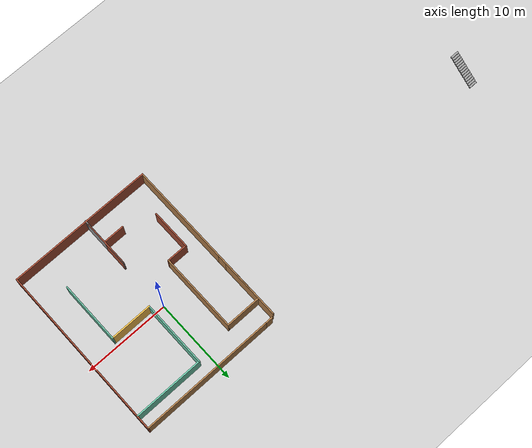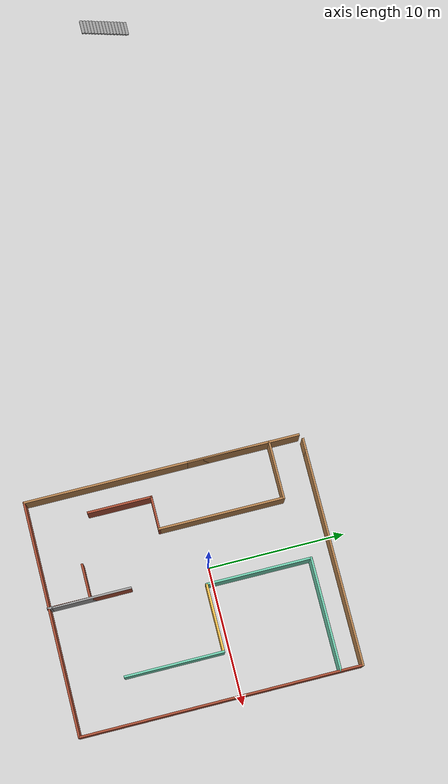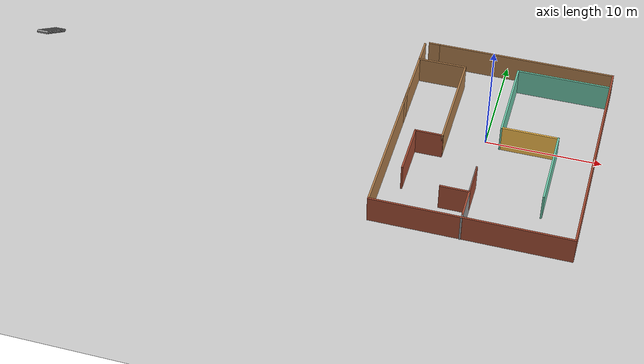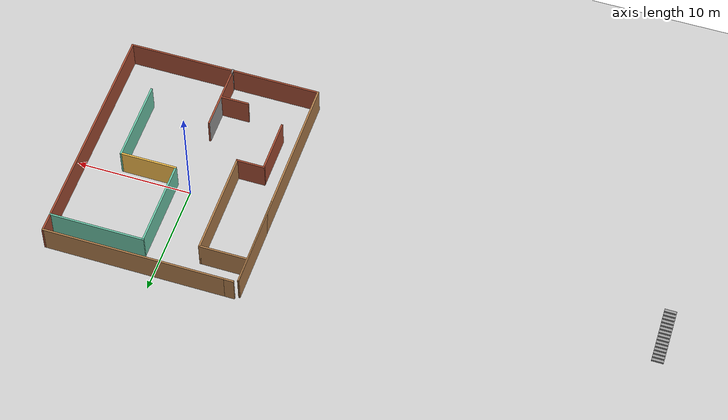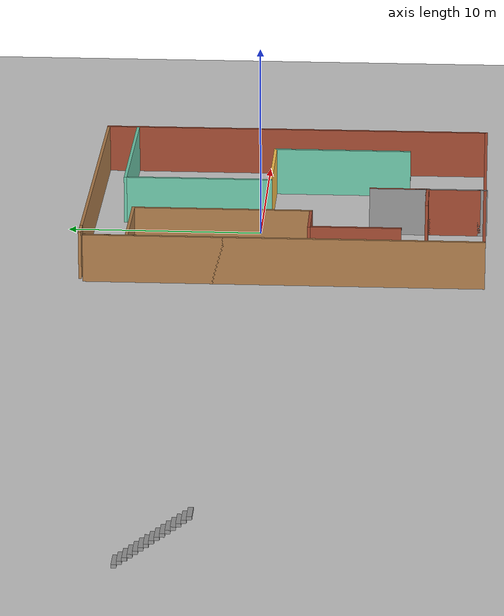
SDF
<sdf version="1.7">
 <world name="default">
  <light name="sun" type="directional">
   <pose>0 0 10 0 -0 0</pose>
   <diffuse>0.8 0.8 0.8 1</diffuse>
   <specular>0.2 0.2 0.2 1</specular>
   <attenuation>
    <range>1000</range>
    <constant>0.9</constant>
    <linear>0.01</linear>
    <quadratic>0.001</quadratic>
   </attenuation>
   <direction>-0.5 0.1 -0.9</direction>
   <spot><inner_angle>0</inner_angle><outer_angle>0</outer_angle><falloff>0</falloff></spot>
  </light>
  <model name="ground_plane">
   <static>1</static>
   <link name="link">
    <collision name="collision">
     <geometry><plane><normal>0 0 1</normal><size>100 100</size></plane></geometry>
     <surface><friction><ode><mu>100</mu><mu2>50</mu2></ode></friction></surface>
    </collision>
    <visual name="visual">
     <cast_shadows>0</cast_shadows>
     <geometry><plane><normal>0 0 1</normal><size>100 100</size></plane></geometry>
     <material>
      <script><uri>file://media/materials/scripts/gazebo.material</uri><name>Gazebo/Grey</name></script>
     </material>
    </visual>
   </link>
  </model>
  <gravity>0 0 -9.8</gravity>
  <magnetic_field>6e-06 2.3e-05 -4.2e-05</magnetic_field>
  <atmosphere type="adiabatic"/>
  <physics type="ode">
   <max_step_size>0.001</max_step_size>
   <real_time_factor>1</real_time_factor>
   <real_time_update_rate>1000</real_time_update_rate>
  </physics>
  <scene><ambient>0.4 0.4 0.4 1</ambient><background>0.7 0.7 0.7 1</background><shadows>1</shadows></scene>
  <audio><device>default</device></audio>
  <spherical_coordinates>
   <surface_model>EARTH_WGS84</surface_model>
   <latitude_deg>0</latitude_deg>
   <longitude_deg>0</longitude_deg>
   <elevation>0</elevation>
   <heading_deg>0</heading_deg>
  </spherical_coordinates>
  <model name="ROOM">
   <pose>1.00201 -1.46261 0 0 -0 0</pose>
   <link name="Wall_11">
    <collision name="Wall_11_Collision">
     <geometry><box><size>4.25 0.15 2.5</size></box></geometry>
     <pose>0 0 1.25 0 -0 0</pose>
    </collision>
    <visual name="Wall_11_Visual">
     <pose>0 0 1.25 0 -0 0</pose>
     <geometry><box><size>4.25 0.15 2.5</size></box></geometry>
     <material>
      <script><uri>file://media/materials/scripts/gazebo.material</uri><name>Gazebo/Wood</name></script>
      <ambient>1 1 1 1</ambient>
     </material>
     <meta><layer>0</layer></meta>
    </visual>
    <pose>-6.33916 7.80408 0 0 -0 0</pose>
   </link>
   <link name="Wall_12">
    <collision name="Wall_12_Collision">
     <geometry><box><size>9.25 0.15 2.5</size></box></geometry>
     <pose>0 0 1.25 0 -0 0</pose>
    </collision>
    <visual name="Wall_12_Visual">
     <pose>0 0 1.25 0 -0 0</pose>
     <geometry><box><size>9.25 0.15 2.5</size></box></geometry>
     <material>
      <script><uri>file://media/materials/scripts/gazebo.material</uri><name>Gazebo/Wood</name></script>
      <ambient>1 1 1 1</ambient>
     </material>
     <meta><layer>0</layer></meta>
    </visual>
    <pose>-4.28916 3.25408 0 0 -0 -1.5708</pose>
   </link>
   <link name="Wall_13">
    <collision name="Wall_13_Collision">
     <geometry><box><size>2.5 0.15 2.5</size></box></geometry>
     <pose>0 0 1.25 0 -0 0</pose>
    </collision>
    <visual name="Wall_13_Visual">
     <pose>0 0 1.25 0 -0 0</pose>
     <geometry><box><size>2.5 0.15 2.5</size></box></geometry>
     <material>
      <script><uri>file://media/materials/scripts/gazebo.material</uri><name>Gazebo/Bricks</name></script>
      <ambient>1 1 1 1</ambient>
     </material>
     <meta><layer>0</layer></meta>
    </visual>
    <pose>-5.46416 -1.29592 0 0 -0 3.14159</pose>
   </link>
   <link name="Wall_14">
    <collision name="Wall_14_Collision">
     <geometry><box><size>4.75 0.15 2.5</size></box></geometry>
     <pose>0 0 1.25 0 -0 0</pose>
    </collision>
    <visual name="Wall_14_Visual">
     <pose>0 0 1.25 0 -0 0</pose>
     <geometry><box><size>4.75 0.15 2.5</size></box></geometry>
     <material>
      <script><uri>file://media/materials/scripts/gazebo.material</uri><name>Gazebo/Bricks</name></script>
      <ambient>1 1 1 1</ambient>
     </material>
     <meta><layer>0</layer></meta>
    </visual>
    <pose>-6.63916 -3.59592 0 0 -0 -1.5708</pose>
   </link>
   <link name="Wall_16">
    <collision name="Wall_16_Collision">
     <geometry><box><size>8.25 0.15 2.5</size></box></geometry>
     <pose>0 0 1.25 0 -0 0</pose>
    </collision>
    <visual name="Wall_16_Visual">
     <pose>0 0 1.25 0 -0 0</pose>
     <geometry><box><size>8.25 0.15 2.5</size></box></geometry>
     <material>
      <script><uri>file://media/materials/scripts/gazebo.material</uri><name>Gazebo/Grey</name></script>
      <ambient>0.435294 0.796078 0.67451 1</ambient>
     </material>
     <meta><layer>0</layer></meta>
    </visual>
    <pose>4.36062 8.60662 0 0 -0 3.14159</pose>
   </link>
   <link name="Wall_17">
    <collision name="Wall_17_Collision">
     <geometry><box><size>7.75 0.15 2.5</size></box></geometry>
     <pose>0 0 1.25 0 -0 0</pose>
    </collision>
    <visual name="Wall_17_Visual">
     <pose>0 0 1.25 0 -0 0</pose>
     <geometry><box><size>7.75 0.15 2.5</size></box></geometry>
     <material>
      <script><uri>file://media/materials/scripts/gazebo.material</uri><name>Gazebo/Grey</name></script>
      <ambient>0.435294 0.796078 0.67451 1</ambient>
     </material>
     <meta><layer>0</layer></meta>
    </visual>
    <pose>0.310622 4.80662 0 0 -0 -1.5708</pose>
   </link>
   <link name="Wall_18">
    <collision name="Wall_18_Collision">
     <geometry><box><size>5 0.15 2.5</size></box></geometry>
     <pose>0 0 1.25 0 -0 0</pose>
    </collision>
    <visual name="Wall_18_Visual">
     <pose>0 0 1.25 0 -0 0</pose>
     <geometry><box><size>5 0.15 2.5</size></box></geometry>
     <material>
      <script><uri>file://media/materials/scripts/gazebo.material</uri><name>Gazebo/Grey</name></script>
      <ambient>1 0.764706 0.305882 1</ambient>
     </material>
     <meta><layer>0</layer></meta>
    </visual>
    <pose>2.73562 1.00662 0 0 -0 0</pose>
   </link>
   <link name="Wall_19">
    <collision name="Wall_19_Collision">
     <geometry><box><size>7.25 0.15 2.5</size></box></geometry>
     <pose>0 0 1.25 0 -0 0</pose>
    </collision>
    <visual name="Wall_19_Visual">
     <pose>0 0 1.25 0 -0 0</pose>
     <geometry><box><size>7.25 0.15 2.5</size></box></geometry>
     <material>
      <script><uri>file://media/materials/scripts/gazebo.material</uri><name>Gazebo/Grey</name></script>
      <ambient>0.435294 0.796078 0.67451 1</ambient>
     </material>
     <meta><layer>0</layer></meta>
    </visual>
    <pose>5.16062 -2.54338 0 0 -0 -1.5708</pose>
   </link>
   <link name="Wall_21">
    <collision name="Wall_21_Collision">
     <geometry><box><size>5.75 0.15 2.5</size></box></geometry>
     <pose>0 0 1.25 0 -0 0</pose>
    </collision>
    <visual name="Wall_21_Visual">
     <pose>0 0 1.25 0 -0 0</pose>
     <geometry><box><size>5.75 0.15 2.5</size></box></geometry>
     <material>
      <script><uri>file://media/materials/scripts/gazebo.material</uri><name>Gazebo/Grey</name></script>
      <ambient>1 1 1 1</ambient>
     </material>
     <meta><layer>0</layer></meta>
    </visual>
    <pose>-0.738306 -7.05174 0 0 -0 1.5708</pose>
   </link>
   <link name="Wall_22">
    <collision name="Wall_22_Collision">
     <geometry><box><size>5.75 0.15 2.5</size></box></geometry>
     <pose>0 0 1.25 0 -0 0</pose>
    </collision>
    <visual name="Wall_22_Visual">
     <pose>0 0 1.25 0 -0 0</pose>
     <geometry><box><size>5.75 0.15 2.5</size></box></geometry>
     <material>
      <script><uri>file://media/materials/scripts/gazebo.material</uri><name>Gazebo/Bricks</name></script>
      <ambient>0.435294 0.796078 0.67451 1</ambient>
     </material>
     <meta><layer>0</layer></meta>
    </visual>
    <pose>-0.738306 -7.05174 0 0 -0 -1.5708</pose>
   </link>
   <link name="Wall_23">
    <collision name="Wall_23_Collision">
     <geometry><box><size>0.15 0.15 2.5</size></box></geometry>
     <pose>0 0 1.25 0 -0 0</pose>
    </collision>
    <visual name="Wall_23_Visual">
     <pose>0 0 1.25 0 -0 0</pose>
     <geometry><box><size>0.15 0.15 2.5</size></box></geometry>
     <material>
      <script><uri>file://media/materials/scripts/gazebo.material</uri><name>Gazebo/Grey</name></script>
      <ambient>1 1 1 1</ambient>
     </material>
     <meta><layer>0</layer></meta>
    </visual>
    <pose>-0.738306 -9.85174 0 0 -0 0</pose>
   </link>
   <link name="Wall_24">
    <collision name="Wall_24_Collision">
     <geometry><box><size>0.5 0.15 2.5</size></box></geometry>
     <pose>0 0 1.25 0 -0 0</pose>
    </collision>
    <visual name="Wall_24_Visual">
     <pose>0 0 1.25 0 -0 0</pose>
     <geometry><box><size>0.5 0.15 2.5</size></box></geometry>
     <material>
      <script><uri>file://media/materials/scripts/gazebo.material</uri><name>Gazebo/Grey</name></script>
      <ambient>1 1 1 1</ambient>
     </material>
     <meta><layer>0</layer></meta>
    </visual>
    <pose>-0.738306 -10.0267 0 0 -0 -1.5708</pose>
   </link>
   <link name="Wall_26">
    <collision name="Wall_26_Collision">
     <geometry><box><size>2.5 0.15 2.5</size></box></geometry>
     <pose>0 0 1.25 0 -0 0</pose>
    </collision>
    <visual name="Wall_26_Visual">
     <pose>0 0 1.25 0 -0 0</pose>
     <geometry><box><size>2.5 0.15 2.5</size></box></geometry>
     <material>
      <script><uri>file://media/materials/scripts/gazebo.material</uri><name>Gazebo/Bricks</name></script>
      <ambient>1 1 1 1</ambient>
     </material>
     <meta><layer>0</layer></meta>
    </visual>
    <pose>-1.97092 -7.17662 0 0 -0 0</pose>
   </link>
   <link name="Wall_4">
    <collision name="Wall_4_Collision">
     <geometry><box><size>8.25 0.15 2.5</size></box></geometry>
     <pose>0 0 1.25 0 -0 0</pose>
    </collision>
    <visual name="Wall_4_Visual">
     <pose>0 0 1.25 0 -0 0</pose>
     <geometry><box><size>8.25 0.15 2.5</size></box></geometry>
     <material>
      <script><uri>file://media/materials/scripts/gazebo.material</uri><name>Gazebo/Wood</name></script>
      <ambient>1 1 1 1</ambient>
     </material>
     <meta><layer>0</layer></meta>
    </visual>
    <pose>-8.425 5.90174 0 0 -0 1.5708</pose>
   </link>
   <link name="Wall_5">
    <collision name="Wall_5_Collision">
     <geometry><box><size>20.25 0.15 2.5</size></box></geometry>
     <pose>0 0 1.25 0 -0 0</pose>
    </collision>
    <visual name="Wall_5_Visual">
     <pose>0 0 1.25 0 -0 0</pose>
     <geometry><box><size>20.25 0.15 2.5</size></box></geometry>
     <material>
      <script><uri>file://media/materials/scripts/gazebo.material</uri><name>Gazebo/Wood</name></script>
      <ambient>1 1 1 1</ambient>
     </material>
     <meta><layer>0</layer></meta>
    </visual>
    <pose>-8.425 -0.098257 0 0 -0 -1.5708</pose>
   </link>
   <link name="Wall_6">
    <collision name="Wall_6_Collision">
     <geometry><box><size>17 0.15 2.5</size></box></geometry>
     <pose>0 0 1.25 0 -0 0</pose>
    </collision>
    <visual name="Wall_6_Visual">
     <pose>0 0 1.25 0 -0 0</pose>
     <geometry><box><size>17 0.15 2.5</size></box></geometry>
     <material>
      <script><uri>file://media/materials/scripts/gazebo.material</uri><name>Gazebo/Bricks</name></script>
      <ambient>1 1 1 1</ambient>
     </material>
     <meta><layer>0</layer></meta>
    </visual>
    <pose>0 -10.1483 0 0 -0 0</pose>
   </link>
   <link name="Wall_7">
    <collision name="Wall_7_Collision">
     <geometry><box><size>20.5 0.15 2.5</size></box></geometry>
     <pose>0 0 1.25 0 -0 0</pose>
    </collision>
    <visual name="Wall_7_Visual">
     <pose>0 0 1.25 0 -0 0</pose>
     <geometry><box><size>20.5 0.15 2.5</size></box></geometry>
     <material>
      <script><uri>file://media/materials/scripts/gazebo.material</uri><name>Gazebo/Bricks</name></script>
      <ambient>1 1 1 1</ambient>
     </material>
     <meta><layer>0</layer></meta>
    </visual>
    <pose>8.425 0.026743 0 0 -0 1.5708</pose>
   </link>
   <link name="Wall_8">
    <collision name="Wall_8_Collision">
     <geometry><box><size>15.75 0.15 2.5</size></box></geometry>
     <pose>0 0 1.25 0 -0 0</pose>
    </collision>
    <visual name="Wall_8_Visual">
     <pose>0 0 1.25 0 -0 0</pose>
     <geometry><box><size>15.75 0.15 2.5</size></box></geometry>
     <material>
      <script><uri>file://media/materials/scripts/gazebo.material</uri><name>Gazebo/Wood</name></script>
      <ambient>1 1 1 1</ambient>
     </material>
     <meta><layer>0</layer></meta>
    </visual>
    <pose>0.625 10.2017 0 0 -0 3.14159</pose>
   </link>
   <link name="Wall_9">
    <collision name="Wall_9_Collision">
     <geometry><box><size>1 0.15 2.5</size></box></geometry>
     <pose>0 0 1.25 0 -0 0</pose>
    </collision>
    <visual name="Wall_9_Visual">
     <pose>0 0 1.25 0 -0 0</pose>
     <geometry><box><size>1 0.15 2.5</size></box></geometry>
     <material>
      <script><uri>file://media/materials/scripts/gazebo.material</uri><name>Gazebo/Wood</name></script>
      <ambient>1 1 1 1</ambient>
     </material>
     <meta><layer>0</layer></meta>
    </visual>
    <pose>-7.6 10.2017 0 0 -0 3.14159</pose>
   </link>
   <static>1</static>
  </model>
  <model name="ROOM_0">
   <pose>-20.8236 2.03939 0 0 -0 0</pose>
   <link name="Stairs_0">
    <visual name="Stairs_0_Visual_0">
     <pose>-20.3236 1.92272 0.083333 0 -0 0</pose>
     <geometry><box><size>1 0.233333 0.166667</size></box></geometry>
     <material>
      <script><uri>file://media/materials/scripts/gazebo.material</uri><name>Gazebo/Grey</name></script>
      <ambient>0 0 0 1</ambient>
     </material>
     <meta><layer>0</layer></meta>
    </visual>
    <collision name="Stairs_0_Collision_0">
     <geometry><box><size>1 0.233333 0.166667</size></box></geometry>
     <pose>-20.3236 1.92272 0.083333 0 -0 0</pose>
    </collision>
    <visual name="Stairs_0_Visual_1">
     <pose>-20.3236 1.68939 0.25 0 -0 0</pose>
     <geometry><box><size>1 0.233333 0.166667</size></box></geometry>
     <material>
      <script><uri>file://media/materials/scripts/gazebo.material</uri><name>Gazebo/Grey</name></script>
      <ambient>0 0 0 1</ambient>
     </material>
     <meta><layer>0</layer></meta>
    </visual>
    <collision name="Stairs_0_Collision_1">
     <geometry><box><size>1 0.233333 0.166667</size></box></geometry>
     <pose>-20.3236 1.68939 0.25 0 -0 0</pose>
    </collision>
    <visual name="Stairs_0_Visual_2">
     <pose>-20.3236 1.45606 0.416667 0 -0 0</pose>
     <geometry><box><size>1 0.233333 0.166667</size></box></geometry>
     <material>
      <script><uri>file://media/materials/scripts/gazebo.material</uri><name>Gazebo/Grey</name></script>
      <ambient>0 0 0 1</ambient>
     </material>
     <meta><layer>0</layer></meta>
    </visual>
    <collision name="Stairs_0_Collision_2">
     <geometry><box><size>1 0.233333 0.166667</size></box></geometry>
     <pose>-20.3236 1.45606 0.416667 0 -0 0</pose>
    </collision>
    <visual name="Stairs_0_Visual_3">
     <pose>-20.3236 1.22272 0.583333 0 -0 0</pose>
     <geometry><box><size>1 0.233333 0.166667</size></box></geometry>
     <material>
      <script><uri>file://media/materials/scripts/gazebo.material</uri><name>Gazebo/Grey</name></script>
      <ambient>0 0 0 1</ambient>
     </material>
     <meta><layer>0</layer></meta>
    </visual>
    <collision name="Stairs_0_Collision_3">
     <geometry><box><size>1 0.233333 0.166667</size></box></geometry>
     <pose>-20.3236 1.22272 0.583333 0 -0 0</pose>
    </collision>
    <visual name="Stairs_0_Visual_4">
     <pose>-20.3236 0.98939 0.75 0 -0 0</pose>
     <geometry><box><size>1 0.233333 0.166667</size></box></geometry>
     <material>
      <script><uri>file://media/materials/scripts/gazebo.material</uri><name>Gazebo/Grey</name></script>
      <ambient>0 0 0 1</ambient>
     </material>
     <meta><layer>0</layer></meta>
    </visual>
    <collision name="Stairs_0_Collision_4">
     <geometry><box><size>1 0.233333 0.166667</size></box></geometry>
     <pose>-20.3236 0.98939 0.75 0 -0 0</pose>
    </collision>
    <visual name="Stairs_0_Visual_5">
     <pose>-20.3236 0.756057 0.916667 0 -0 0</pose>
     <geometry><box><size>1 0.233333 0.166667</size></box></geometry>
     <material>
      <script><uri>file://media/materials/scripts/gazebo.material</uri><name>Gazebo/Grey</name></script>
      <ambient>0 0 0 1</ambient>
     </material>
     <meta><layer>0</layer></meta>
    </visual>
    <collision name="Stairs_0_Collision_5">
     <geometry><box><size>1 0.233333 0.166667</size></box></geometry>
     <pose>-20.3236 0.756057 0.916667 0 -0 0</pose>
    </collision>
    <visual name="Stairs_0_Visual_6">
     <pose>-20.3236 0.522724 1.08333 0 -0 0</pose>
     <geometry><box><size>1 0.233333 0.166667</size></box></geometry>
     <material>
      <script><uri>file://media/materials/scripts/gazebo.material</uri><name>Gazebo/Grey</name></script>
      <ambient>0 0 0 1</ambient>
     </material>
     <meta><layer>0</layer></meta>
    </visual>
    <collision name="Stairs_0_Collision_6">
     <geometry><box><size>1 0.233333 0.166667</size></box></geometry>
     <pose>-20.3236 0.522724 1.08333 0 -0 0</pose>
    </collision>
    <visual name="Stairs_0_Visual_7">
     <pose>-20.3236 0.28939 1.25 0 -0 0</pose>
     <geometry><box><size>1 0.233333 0.166667</size></box></geometry>
     <material>
      <script><uri>file://media/materials/scripts/gazebo.material</uri><name>Gazebo/Grey</name></script>
      <ambient>0 0 0 1</ambient>
     </material>
     <meta><layer>0</layer></meta>
    </visual>
    <collision name="Stairs_0_Collision_7">
     <geometry><box><size>1 0.233333 0.166667</size></box></geometry>
     <pose>-20.3236 0.28939 1.25 0 -0 0</pose>
    </collision>
    <visual name="Stairs_0_Visual_8">
     <pose>-20.3236 0.056057 1.41667 0 -0 0</pose>
     <geometry><box><size>1 0.233333 0.166667</size></box></geometry>
     <material>
      <script><uri>file://media/materials/scripts/gazebo.material</uri><name>Gazebo/Grey</name></script>
      <ambient>0 0 0 1</ambient>
     </material>
     <meta><layer>0</layer></meta>
    </visual>
    <collision name="Stairs_0_Collision_8">
     <geometry><box><size>1 0.233333 0.166667</size></box></geometry>
     <pose>-20.3236 0.056057 1.41667 0 -0 0</pose>
    </collision>
    <visual name="Stairs_0_Visual_9">
     <pose>-20.3236 -0.177276 1.58333 0 -0 0</pose>
     <geometry><box><size>1 0.233333 0.166667</size></box></geometry>
     <material>
      <script><uri>file://media/materials/scripts/gazebo.material</uri><name>Gazebo/Grey</name></script>
      <ambient>0 0 0 1</ambient>
     </material>
     <meta><layer>0</layer></meta>
    </visual>
    <collision name="Stairs_0_Collision_9">
     <geometry><box><size>1 0.233333 0.166667</size></box></geometry>
     <pose>-20.3236 -0.177276 1.58333 0 -0 0</pose>
    </collision>
    <visual name="Stairs_0_Visual_10">
     <pose>-20.3236 -0.41061 1.75 0 -0 0</pose>
     <geometry><box><size>1 0.233333 0.166667</size></box></geometry>
     <material>
      <script><uri>file://media/materials/scripts/gazebo.material</uri><name>Gazebo/Grey</name></script>
      <ambient>0 0 0 1</ambient>
     </material>
     <meta><layer>0</layer></meta>
    </visual>
    <collision name="Stairs_0_Collision_10">
     <geometry><box><size>1 0.233333 0.166667</size></box></geometry>
     <pose>-20.3236 -0.41061 1.75 0 -0 0</pose>
    </collision>
    <visual name="Stairs_0_Visual_11">
     <pose>-20.3236 -0.643943 1.91667 0 -0 0</pose>
     <geometry><box><size>1 0.233333 0.166667</size></box></geometry>
     <material>
      <script><uri>file://media/materials/scripts/gazebo.material</uri><name>Gazebo/Grey</name></script>
      <ambient>0 0 0 1</ambient>
     </material>
     <meta><layer>0</layer></meta>
    </visual>
    <collision name="Stairs_0_Collision_11">
     <geometry><box><size>1 0.233333 0.166667</size></box></geometry>
     <pose>-20.3236 -0.643943 1.91667 0 -0 0</pose>
    </collision>
    <visual name="Stairs_0_Visual_12">
     <pose>-20.3236 -0.877276 2.08333 0 -0 0</pose>
     <geometry><box><size>1 0.233333 0.166667</size></box></geometry>
     <material>
      <script><uri>file://media/materials/scripts/gazebo.material</uri><name>Gazebo/Grey</name></script>
      <ambient>0 0 0 1</ambient>
     </material>
     <meta><layer>0</layer></meta>
    </visual>
    <collision name="Stairs_0_Collision_12">
     <geometry><box><size>1 0.233333 0.166667</size></box></geometry>
     <pose>-20.3236 -0.877276 2.08333 0 -0 0</pose>
    </collision>
    <visual name="Stairs_0_Visual_13">
     <pose>-20.3236 -1.11061 2.25 0 -0 0</pose>
     <geometry><box><size>1 0.233333 0.166667</size></box></geometry>
     <material>
      <script><uri>file://media/materials/scripts/gazebo.material</uri><name>Gazebo/Grey</name></script>
      <ambient>0 0 0 1</ambient>
     </material>
     <meta><layer>0</layer></meta>
    </visual>
    <collision name="Stairs_0_Collision_13">
     <geometry><box><size>1 0.233333 0.166667</size></box></geometry>
     <pose>-20.3236 -1.11061 2.25 0 -0 0</pose>
    </collision>
    <visual name="Stairs_0_Visual_14">
     <pose>-20.3236 -1.34394 2.41667 0 -0 0</pose>
     <geometry><box><size>1 0.233333 0.166667</size></box></geometry>
     <material>
      <script><uri>file://media/materials/scripts/gazebo.material</uri><name>Gazebo/Grey</name></script>
      <ambient>0 0 0 1</ambient>
     </material>
     <meta><layer>0</layer></meta>
    </visual>
    <collision name="Stairs_0_Collision_14">
     <geometry><box><size>1 0.233333 0.166667</size></box></geometry>
     <pose>-20.3236 -1.34394 2.41667 0 -0 0</pose>
    </collision>
   </link>
   <static>1</static>
  </model>
 </world>
</sdf>
